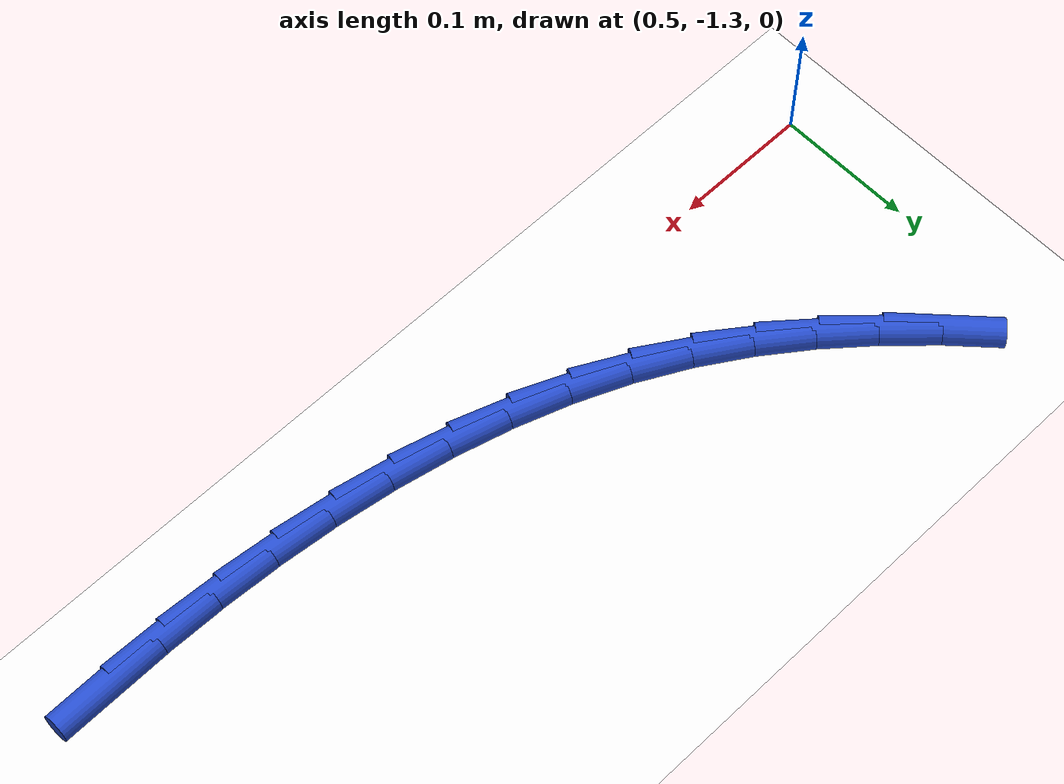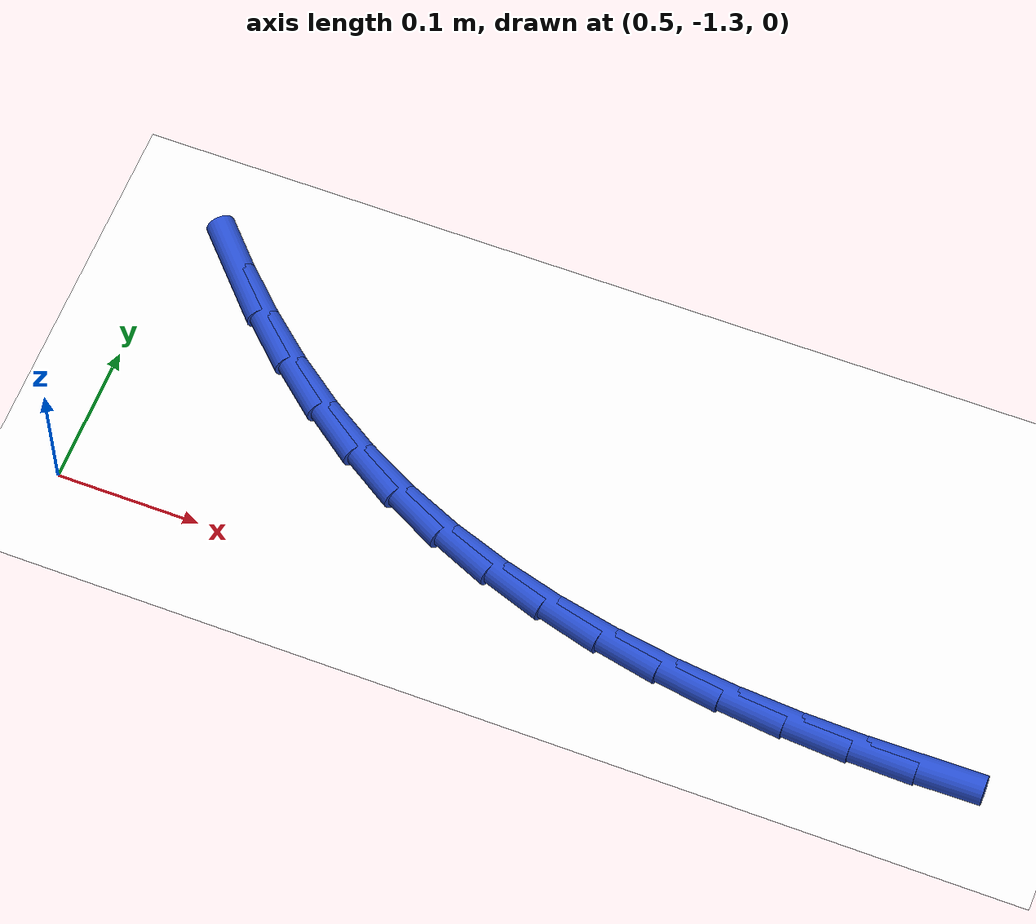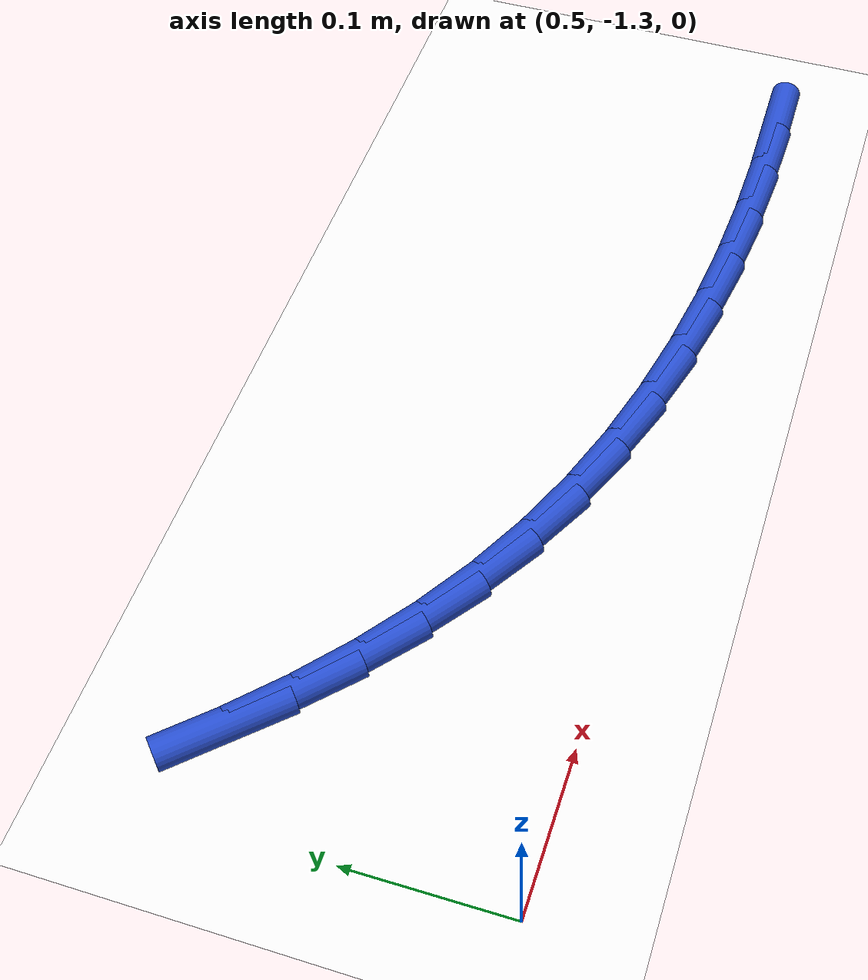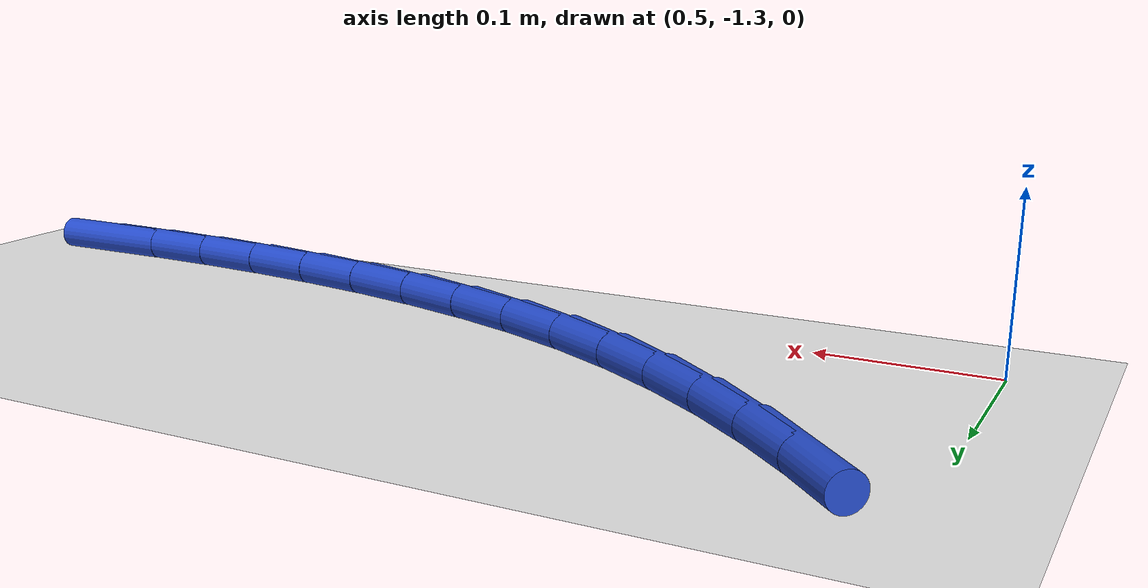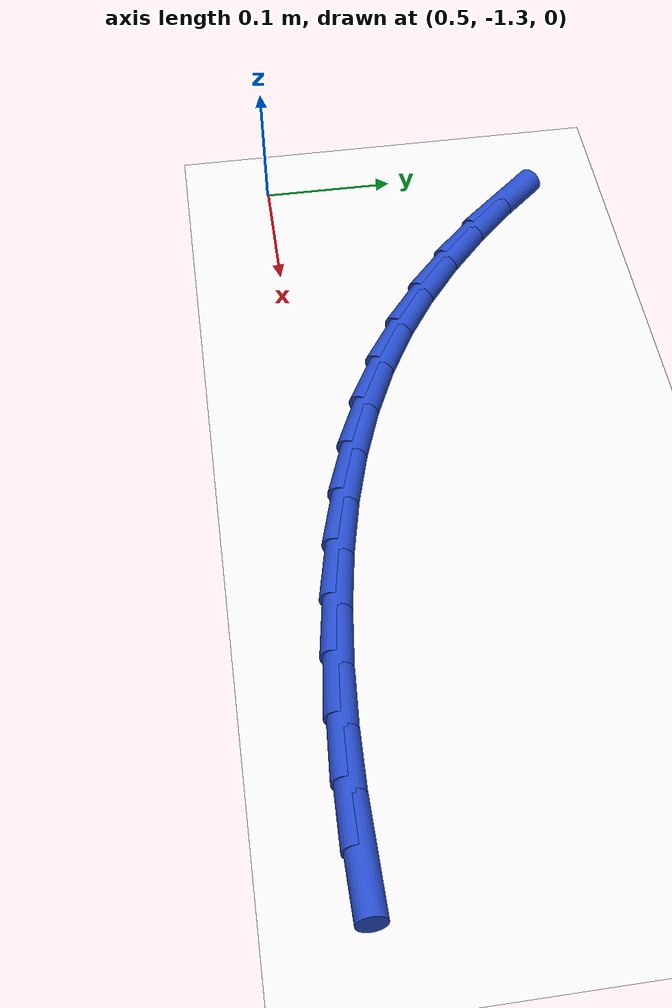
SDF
<sdf version="1.6">
 <world name="default">
  <model name="ground_plane">
   <static>1</static>
   <link name="link">
    <collision name="collision">
     <geometry><plane><normal>0 0 1</normal><size>100 100</size></plane></geometry>
     <surface><friction><ode><mu>100</mu><mu2>50</mu2></ode></friction></surface>
    </collision>
    <visual name="visual">
     <cast_shadows>0</cast_shadows>
     <geometry><plane><normal>0 0 1</normal><size>100 100</size></plane></geometry>
     <material>
      <script><uri>file://media/materials/scripts/gazebo.material</uri><name>Gazebo/WhiteGlow</name></script>
     </material>
    </visual>
   </link>
  </model>
  <model name="line">
   <link name="link_137">
    <pose>1.1024438878316456 -1.3033087603583162 0.01 0 1.57 0.013719147009194209</pose>
    <collision name="collision">
     <geometry><cylinder><radius>0.01</radius><length>0.08</length></cylinder></geometry>
    </collision>
    <visual name="visual">
     <material>
      <script><name>Gazebo/Blue</name><uri>file://media/materials/scripts/gazebo.material</uri></script>
     </material>
     <geometry><cylinder><radius>0.01</radius><length>0.08</length></cylinder></geometry>
    </visual>
   </link>
   <link name="link_138">
    <pose>1.0584621473518456 -1.303912190180334 0.01 0 1.57 -0.023042091535046712</pose>
    <collision name="collision">
     <geometry><cylinder><radius>0.01</radius><length>0.08</length></cylinder></geometry>
    </collision>
    <visual name="visual">
     <material>
      <script><name>Gazebo/Blue</name><uri>file://media/materials/scripts/gazebo.material</uri></script>
     </material>
     <geometry><cylinder><radius>0.01</radius><length>0.08</length></cylinder></geometry>
    </visual>
   </link>
   <link name="link_139">
    <pose>1.0142197455905315 -1.3028925722515368 0.01 0 1.57 -0.06306134703772058</pose>
    <collision name="collision">
     <geometry><cylinder><radius>0.01</radius><length>0.08</length></cylinder></geometry>
    </collision>
    <visual name="visual">
     <material>
      <script><name>Gazebo/Blue</name><uri>file://media/materials/scripts/gazebo.material</uri></script>
     </material>
     <geometry><cylinder><radius>0.01</radius><length>0.08</length></cylinder></geometry>
    </visual>
   </link>
   <link name="link_140">
    <pose>0.9699820259857213 -1.3000991782201237 0.01 0 1.57 -0.1068947376637108</pose>
    <collision name="collision">
     <geometry><cylinder><radius>0.01</radius><length>0.08</length></cylinder></geometry>
    </collision>
    <visual name="visual">
     <material>
      <script><name>Gazebo/Blue</name><uri>file://media/materials/scripts/gazebo.material</uri></script>
     </material>
     <geometry><cylinder><radius>0.01</radius><length>0.08</length></cylinder></geometry>
    </visual>
   </link>
   <link name="link_141">
    <pose>0.9260143319754325 -1.2953812797342954 0.01 0 1.57 -0.15515025818073927</pose>
    <collision name="collision">
     <geometry><cylinder><radius>0.01</radius><length>0.08</length></cylinder></geometry>
    </collision>
    <visual name="visual">
     <material>
      <script><name>Gazebo/Blue</name><uri>file://media/materials/scripts/gazebo.material</uri></script>
     </material>
     <geometry><cylinder><radius>0.01</radius><length>0.08</length></cylinder></geometry>
    </visual>
   </link>
   <link name="link_142">
    <pose>0.8825820069976822 -1.28858814844225 0.01 0 1.57 -0.20848467812776805</pose>
    <collision name="collision">
     <geometry><cylinder><radius>0.01</radius><length>0.08</length></cylinder></geometry>
    </collision>
    <visual name="visual">
     <material>
      <script><name>Gazebo/Blue</name><uri>file://media/materials/scripts/gazebo.material</uri></script>
     </material>
     <geometry><cylinder><radius>0.01</radius><length>0.08</length></cylinder></geometry>
    </visual>
   </link>
   <link name="link_143">
    <pose>0.8399503944904902 -1.279569055992188 0.01 0 1.57 -0.2675888827906232</pose>
    <collision name="collision">
     <geometry><cylinder><radius>0.01</radius><length>0.08</length></cylinder></geometry>
    </collision>
    <visual name="visual">
     <material>
      <script><name>Gazebo/Blue</name><uri>file://media/materials/scripts/gazebo.material</uri></script>
     </material>
     <geometry><cylinder><radius>0.01</radius><length>0.08</length></cylinder></geometry>
    </visual>
   </link>
   <link name="link_144">
    <pose>0.7983848378918735 -1.2681732740323093 0.01 0 1.57 -0.33315533049018725</pose>
    <collision name="collision">
     <geometry><cylinder><radius>0.01</radius><length>0.08</length></cylinder></geometry>
    </collision>
    <visual name="visual">
     <material>
      <script><name>Gazebo/Blue</name><uri>file://media/materials/scripts/gazebo.material</uri></script>
     </material>
     <geometry><cylinder><radius>0.01</radius><length>0.08</length></cylinder></geometry>
    </visual>
   </link>
   <link name="link_145">
    <pose>0.7581506806398499 -1.2542500742108131 0.01 0 1.57 -0.40581969874884966</pose>
    <collision name="collision">
     <geometry><cylinder><radius>0.01</radius><length>0.08</length></cylinder></geometry>
    </collision>
    <visual name="visual">
     <material>
      <script><name>Gazebo/Blue</name><uri>file://media/materials/scripts/gazebo.material</uri></script>
     </material>
     <geometry><cylinder><radius>0.01</radius><length>0.08</length></cylinder></geometry>
    </visual>
   </link>
   <link name="link_146">
    <pose>0.7195132661724374 -1.2376487281758992 0.01 0 1.57 -0.485336093394798</pose>
    <collision name="collision">
     <geometry><cylinder><radius>0.01</radius><length>0.08</length></cylinder></geometry>
    </collision>
    <visual name="visual">
     <material>
      <script><name>Gazebo/Blue</name><uri>file://media/materials/scripts/gazebo.material</uri></script>
     </material>
     <geometry><cylinder><radius>0.01</radius><length>0.08</length></cylinder></geometry>
    </visual>
   </link>
   <link name="link_147">
    <pose>0.6827136503457584 -1.2182401630128192 0.01 0 1.57 -0.5644188498979978</pose>
    <collision name="collision">
     <geometry><cylinder><radius>0.01</radius><length>0.08</length></cylinder></geometry>
    </collision>
    <visual name="visual">
     <material>
      <script><name>Gazebo/Blue</name><uri>file://media/materials/scripts/gazebo.material</uri></script>
     </material>
     <geometry><cylinder><radius>0.01</radius><length>0.08</length></cylinder></geometry>
    </visual>
   </link>
   <link name="link_148">
    <pose>0.647755233664564 -1.1961072054732478 0.01 0 1.57 -0.6380587067411462</pose>
    <collision name="collision">
     <geometry><cylinder><radius>0.01</radius><length>0.08</length></cylinder></geometry>
    </collision>
    <visual name="visual">
     <material>
      <script><name>Gazebo/Blue</name><uri>file://media/materials/scripts/gazebo.material</uri></script>
     </material>
     <geometry><cylinder><radius>0.01</radius><length>0.08</length></cylinder></geometry>
    </visual>
   </link>
   <link name="link_149">
    <pose>0.6145069468936791 -1.1714525790116723 0.01 0 1.57 -0.7054477422380867</pose>
    <collision name="collision">
     <geometry><cylinder><radius>0.01</radius><length>0.08</length></cylinder></geometry>
    </collision>
    <visual name="visual">
     <material>
      <script><name>Gazebo/Blue</name><uri>file://media/materials/scripts/gazebo.material</uri></script>
     </material>
     <geometry><cylinder><radius>0.01</radius><length>0.08</length></cylinder></geometry>
    </visual>
   </link>
   <link name="link_150">
    <pose>0.5828361925430631 -1.1444803697141956 0.01 0 1.57 -0.7661780713467009</pose>
    <collision name="collision">
     <geometry><cylinder><radius>0.01</radius><length>0.08</length></cylinder></geometry>
    </collision>
    <visual name="visual">
     <material>
      <script><name>Gazebo/Blue</name><uri>file://media/materials/scripts/gazebo.material</uri></script>
     </material>
     <geometry><cylinder><radius>0.01</radius><length>0.08</length></cylinder></geometry>
    </visual>
   </link>
   <link name="link_151">
    <pose>0.5526103731226752 -1.1153946636669212 0.01 0 1.57 -0.8201310336935621</pose>
    <collision name="collision">
     <geometry><cylinder><radius>0.01</radius><length>0.08</length></cylinder></geometry>
    </collision>
    <visual name="visual">
     <material>
      <script><name>Gazebo/Blue</name><uri>file://media/materials/scripts/gazebo.material</uri></script>
     </material>
     <geometry><cylinder><radius>0.01</radius><length>0.08</length></cylinder></geometry>
    </visual>
   </link>
  </model>
 </world>
</sdf>
